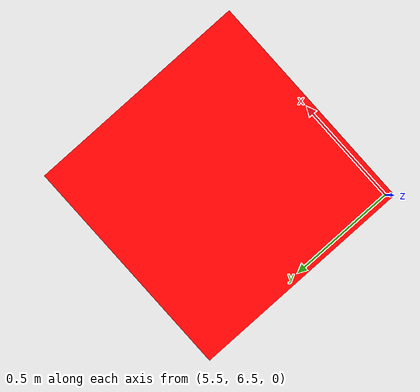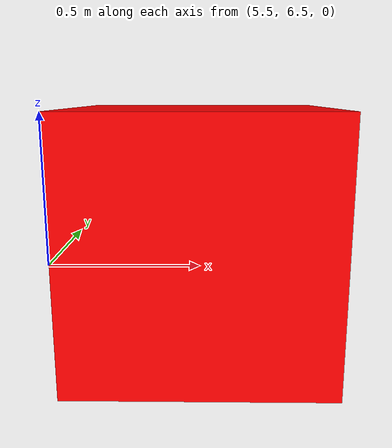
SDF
<?xml version="1.0"?>
<sdf version="1.6">
  <model name="obs_20">
    <static>true</static>
    <pose>6 7 0 0 0 0</pose>
    <link name="obs_20_link">
      <inertial>
        <mass>900.0</mass>
        <inertia>
          <ixx>0.16666</ixx>
          <ixy>0</ixy>
          <ixz>0</ixz>
          <iyy>0.16666</iyy>
          <iyz>0</iyz>
          <izz>0.16666</izz>
        </inertia>
      </inertial>
      <collision name="obs_20_collision">
        <geometry>
          <box>
            <size>1 1 1</size>
          </box>
        </geometry>
      </collision>
      <visual name="obs_20_visual">
        <geometry>
          <box>
            <size>1 1 1</size>
          </box>
        </geometry>
        <material>
          <ambient>1 0 0 1</ambient>
          <diffuse>1 0 0 1</diffuse>
          <specular>1 0 0 1</specular>
        </material>
      </visual>
    </link>
    <plugin
      filename="gz-sim-pose-publisher-system"
      name="gz::sim::systems::PosePublisher">
      <publish_link_pose>false</publish_link_pose>
      <publish_sensor_pose>false</publish_sensor_pose>
      <publish_collision_pose>false</publish_collision_pose>
      <publish_visual_pose>false</publish_visual_pose>
      <publish_model_pose>true</publish_model_pose>
      <publish_nested_model_pose>true</publish_nested_model_pose>
    </plugin>
  </model>
</sdf>
